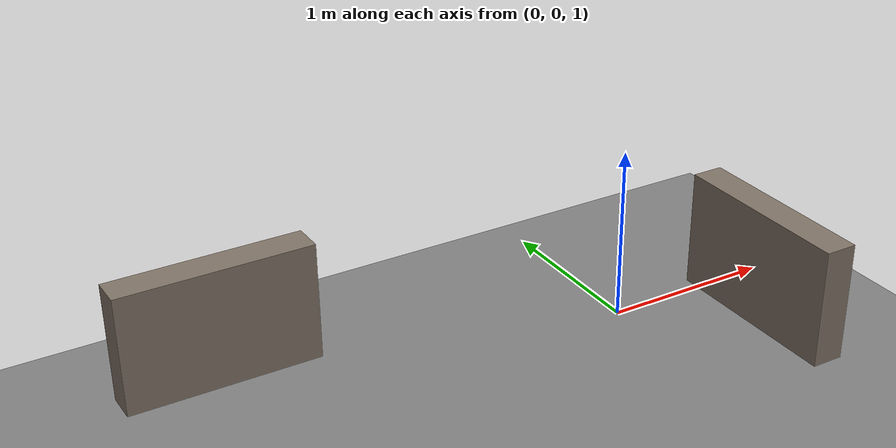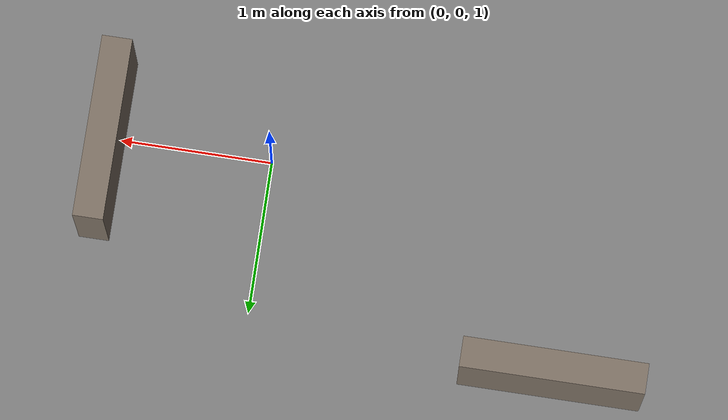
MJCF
<!-- Please activate Camera rendering when loading this model.
     The frustum should match exactly the fron face of the box. -->

<mujoco>
  <option>
    <flag multiccd="enable"/>
  </option>

  <visual>
    <map znear="0.01"/>
    <rgba frustum="1. 1. 0 0.2"/>
    <scale frustum="3"/>
  </visual>

  <asset>
    <texture name="grid" type="2d" builtin="checker" width="512" height="512" rgb1=".8 .6 .4" rgb2=".2 .3 .4"/>
    <material name="grid" texture="grid" texrepeat="9 16" texuniform="false" reflectance=".2"/>
    <texture type="skybox" builtin="flat" rgb1=".5 .5 1" height="1" width="1"/>
  </asset>

  <worldbody>
    <light pos="0 0 3"/>
    <geom type="plane" size="10 10 .01"/>

    <geom type="box" size=".375 .6 .1" pos="1.1 0 1" material="grid" euler="0 90 0"/>
    <!-- 8mm focal length lenses -->
    <camera pos="0 0 1" xyaxes="0 -1 0 0 0 1" focalpixel="1600 1600" resolution="1920 1200"
            sensorsize="9.6e-3 6e-3"/>

    <body euler="0 0 90">
      <geom type="box" size=".375 .6 .1" pos="1.1 2 1" material="grid" euler="0 90 0"/>
      <!-- 8mm focal length lenses -->
      <camera pos="0 2 1" xyaxes="0 -1 0 0 0 1" focal="8e-3 8e-3" resolution="1920 1200"
              sensorsize="9.6e-3 6e-3" principalpixel="200 0"/>
    </body>
  </worldbody>
</mujoco>
